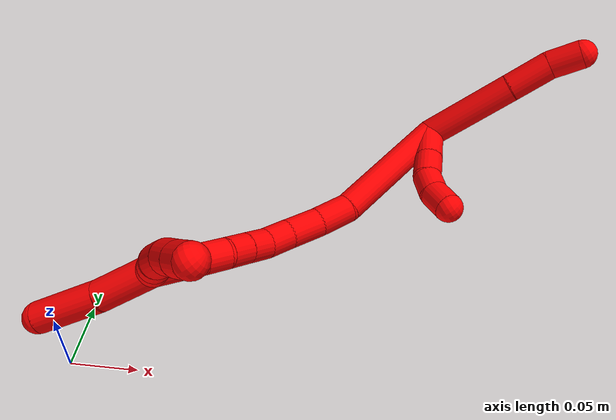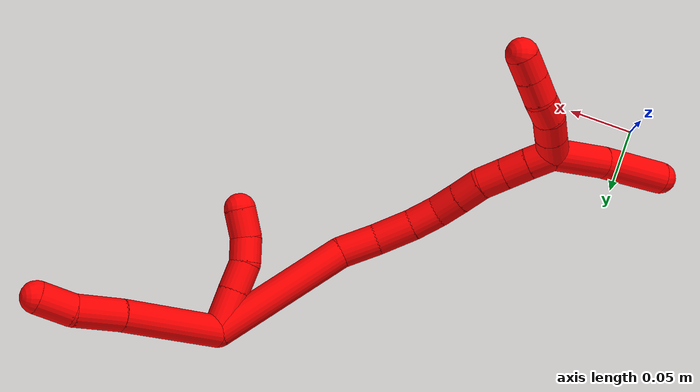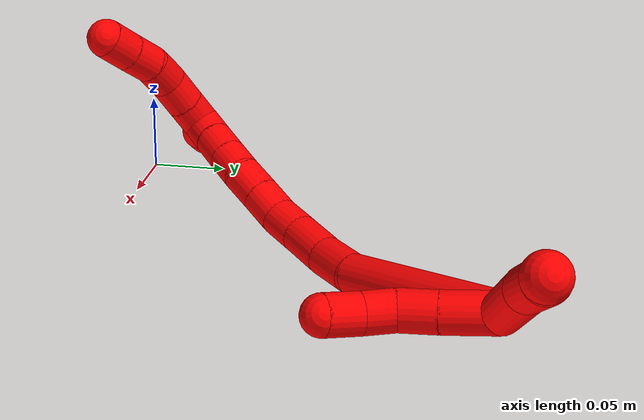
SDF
<sdf version="1.7">
 <world name="default">
  <model name="photoneo_s_sensor">
   <static>1</static>
   <pose>0 0 2 1.57079 1.57079 3.14159</pose>
   <link name="link">
    <inertial><mass>0.1</mass></inertial>
    <sensor name="sensor" type="depth">
     <update_rate>30</update_rate>
     <camera>
      <horizontal_fov>1.22</horizontal_fov>
      <image><width>1920</width><height>1200</height><format>B8G8R8</format></image>
      <clip><near>0.1</near><far>4</far></clip>
      <depth_camera><output>points</output></depth_camera>
     </camera>
     <plugin name="camera_plugin" filename="libgazebo_ros_depth_camera.so">
      <baseline>0.2</baseline>
      <alwaysOn>1</alwaysOn>
      <updateRate>0.0</updateRate>
      <cameraName>camera_ir</cameraName>
      <imageTopicName>/camera/color/image_raw</imageTopicName>
      <cameraInfoTopicName>/camera/color/camera_info</cameraInfoTopicName>
      <depthImageTopicName>/camera/depth/image_raw</depthImageTopicName>
      <depthImageCameraInfoTopicName>/camera/depth/camera_info</depthImageCameraInfoTopicName>
      <pointCloudTopicName>/camera/depth/points</pointCloudTopicName>
      <frameName>fr_optical</frameName>
      <pointCloudCutoff>0.1</pointCloudCutoff>
      <pointCloudCutoffMax>2.0</pointCloudCutoffMax>
      <distortionK1>0</distortionK1>
      <distortionK2>0</distortionK2>
      <distortionK3>0</distortionK3>
      <distortionT1>0</distortionT1>
      <distortionT2>0</distortionT2>
      <CxPrime>0</CxPrime>
      <Cx>0</Cx>
      <Cy>0</Cy>
      <focalLength>0</focalLength>
      <hackBaseline>0</hackBaseline>
     </plugin>
    </sensor>
   </link>
  </model>
  <model name="bin">
   <static>1</static>
   <link name="bottom">
    <collision name="collision-bottom">
     <pose>0 0 -0.01 0 -0 0</pose>
     <geometry><box><size>0.8 0.6 0.02</size></box></geometry>
     <surface>
      <friction><ode><mu>100</mu><mu2>100</mu2></ode></friction>
      <contact><collide_bitmask>65535</collide_bitmask></contact>
     </surface>
    </collision>
   </link>
   <link name="west_wall">
    <collision name="collision-west_wall">
     <pose>-0.41 0 0.1 0 -0 0</pose>
     <geometry><box><size>0.02 0.6 0.2</size></box></geometry>
     <surface>
      <friction><ode><mu>100</mu><mu2>100</mu2></ode></friction>
      <contact><collide_bitmask>65535</collide_bitmask></contact>
     </surface>
    </collision>
   </link>
   <link name="east_wall">
    <collision name="collision-east_wall">
     <pose>0.41 0 0.1 0 -0 0</pose>
     <geometry><box><size>0.02 0.6 0.2</size></box></geometry>
     <surface>
      <friction><ode><mu>100</mu><mu2>100</mu2></ode></friction>
      <contact><collide_bitmask>65535</collide_bitmask></contact>
     </surface>
    </collision>
   </link>
   <link name="south_wall">
    <collision name="collision-south_wall">
     <pose>0 -0.31 0.1 0 -0 0</pose>
     <geometry><box><size>0.8 0.02 0.2</size></box></geometry>
     <surface>
      <friction><ode><mu>100</mu><mu2>100</mu2></ode></friction>
      <contact><collide_bitmask>65535</collide_bitmask></contact>
     </surface>
    </collision>
   </link>
   <link name="north_wall">
    <collision name="collision-north_wall">
     <pose>0 0.31 0.1 0 -0 0</pose>
     <geometry><box><size>0.8 0.02 0.2</size></box></geometry>
     <surface>
      <friction><ode><mu>100</mu><mu2>100</mu2></ode></friction>
      <contact><collide_bitmask>65535</collide_bitmask></contact>
     </surface>
    </collision>
   </link>
  </model>
  <model name="2">
   <static>0</static>
   <link name="2">
    <collision name="collision-cylinder-e_1_2_8">
     <pose>-0.001439 -0.006623 0.040849 0.160727 -0.034748 -0.002799</pose>
     <geometry><cylinder><radius>0.0125</radius><length>0.082815</length></cylinder></geometry>
     <surface>
      <friction><ode><mu>1.16</mu><mu2>1.16</mu2><slip1>0</slip1><slip2>0</slip2></ode></friction>
      <contact><ode><kp>1e+06</kp><kd>1</kd><max_vel>0</max_vel><min_depth>0.001</min_depth></ode></contact>
     </surface>
    </collision>
    <visual name="visual-cylinder-e_1_2_8">
     <pose>-0.001439 -0.006623 0.040849 0.160727 -0.034748 -0.002799</pose>
     <geometry><cylinder><radius>0.0125</radius><length>0.082815</length></cylinder></geometry>
     <material><ambient>1 0 0 1</ambient></material>
    </visual>
    <collision name="collision-cylinder-e_2_8_9">
     <pose>-0.002844 -0.015138 0.100876 0.098349 0.001739 8.6e-05</pose>
     <geometry><cylinder><radius>0.0125</radius><length>0.038541</length></cylinder></geometry>
     <surface>
      <friction><ode><mu>1.16</mu><mu2>1.16</mu2><slip1>0</slip1><slip2>0</slip2></ode></friction>
      <contact><ode><kp>1e+06</kp><kd>1</kd><max_vel>0</max_vel><min_depth>0.001</min_depth></ode></contact>
     </surface>
    </collision>
    <visual name="visual-cylinder-e_2_8_9">
     <pose>-0.002844 -0.015138 0.100876 0.098349 0.001739 8.6e-05</pose>
     <geometry><cylinder><radius>0.0125</radius><length>0.038541</length></cylinder></geometry>
     <material><ambient>1 0 0 1</ambient></material>
    </visual>
    <collision name="collision-cylinder-e_3_9_6">
     <pose>-0.001404 -0.021647 0.133538 0.329897 0.098312 0.016378</pose>
     <geometry><cylinder><radius>0.0125</radius><length>0.028643</length></cylinder></geometry>
     <surface>
      <friction><ode><mu>1.16</mu><mu2>1.16</mu2><slip1>0</slip1><slip2>0</slip2></ode></friction>
      <contact><ode><kp>1e+06</kp><kd>1</kd><max_vel>0</max_vel><min_depth>0.001</min_depth></ode></contact>
     </surface>
    </collision>
    <visual name="visual-cylinder-e_3_9_6">
     <pose>-0.001404 -0.021647 0.133538 0.329897 0.098312 0.016378</pose>
     <geometry><cylinder><radius>0.0125</radius><length>0.028643</length></cylinder></geometry>
     <material><ambient>1 0 0 1</ambient></material>
    </visual>
    <collision name="collision-cylinder-e_1_2_10">
     <pose>0.000982 -0.01541 -0.006113 1.94845 0.059185 0.08712</pose>
     <geometry><cylinder><radius>0.0125</radius><length>0.033216</length></cylinder></geometry>
     <surface>
      <friction><ode><mu>1.16</mu><mu2>1.16</mu2><slip1>0</slip1><slip2>0</slip2></ode></friction>
      <contact><ode><kp>1e+06</kp><kd>1</kd><max_vel>0</max_vel><min_depth>0.001</min_depth></ode></contact>
     </surface>
    </collision>
    <visual name="visual-cylinder-e_1_2_10">
     <pose>0.000982 -0.01541 -0.006113 1.94845 0.059185 0.08712</pose>
     <geometry><cylinder><radius>0.0125</radius><length>0.033216</length></cylinder></geometry>
     <material><ambient>1 0 0 1</ambient></material>
    </visual>
    <collision name="collision-cylinder-e_2_10_11">
     <pose>0.00223 -0.041739 -0.01655 1.94787 0.022621 0.033288</pose>
     <geometry><cylinder><radius>0.0125</radius><length>0.023492</length></cylinder></geometry>
     <surface>
      <friction><ode><mu>1.16</mu><mu2>1.16</mu2><slip1>0</slip1><slip2>0</slip2></ode></friction>
      <contact><ode><kp>1e+06</kp><kd>1</kd><max_vel>0</max_vel><min_depth>0.001</min_depth></ode></contact>
     </surface>
    </collision>
    <visual name="visual-cylinder-e_2_10_11">
     <pose>0.00223 -0.041739 -0.01655 1.94787 0.022621 0.033288</pose>
     <geometry><cylinder><radius>0.0125</radius><length>0.023492</length></cylinder></geometry>
     <material><ambient>1 0 0 1</ambient></material>
    </visual>
    <collision name="collision-cylinder-e_3_11_12">
     <pose>0.004446 -0.062513 -0.0217 1.65439 0.194651 0.211521</pose>
     <geometry><cylinder><radius>0.0125</radius><length>0.020161</length></cylinder></geometry>
     <surface>
      <friction><ode><mu>1.16</mu><mu2>1.16</mu2><slip1>0</slip1><slip2>0</slip2></ode></friction>
      <contact><ode><kp>1e+06</kp><kd>1</kd><max_vel>0</max_vel><min_depth>0.001</min_depth></ode></contact>
     </surface>
    </collision>
    <visual name="visual-cylinder-e_3_11_12">
     <pose>0.004446 -0.062513 -0.0217 1.65439 0.194651 0.211521</pose>
     <geometry><cylinder><radius>0.0125</radius><length>0.020161</length></cylinder></geometry>
     <material><ambient>1 0 0 1</ambient></material>
    </visual>
    <collision name="collision-cylinder-e_4_12_5">
     <pose>0.008374 -0.083497 -0.020075 1.35402 0.171909 0.138289</pose>
     <geometry><cylinder><radius>0.0125</radius><length>0.023132</length></cylinder></geometry>
     <surface>
      <friction><ode><mu>1.16</mu><mu2>1.16</mu2><slip1>0</slip1><slip2>0</slip2></ode></friction>
      <contact><ode><kp>1e+06</kp><kd>1</kd><max_vel>0</max_vel><min_depth>0.001</min_depth></ode></contact>
     </surface>
    </collision>
    <visual name="visual-cylinder-e_4_12_5">
     <pose>0.008374 -0.083497 -0.020075 1.35402 0.171909 0.138289</pose>
     <geometry><cylinder><radius>0.0125</radius><length>0.023132</length></cylinder></geometry>
     <material><ambient>1 0 0 1</ambient></material>
    </visual>
    <collision name="collision-cylinder-e_1_2_13">
     <pose>-0.012089 -0.032502 -0.045276 2.51898 -0.213595 -0.643221</pose>
     <geometry><cylinder><radius>0.0125</radius><length>0.11406</length></cylinder></geometry>
     <surface>
      <friction><ode><mu>1.16</mu><mu2>1.16</mu2><slip1>0</slip1><slip2>0</slip2></ode></friction>
      <contact><ode><kp>1e+06</kp><kd>1</kd><max_vel>0</max_vel><min_depth>0.001</min_depth></ode></contact>
     </surface>
    </collision>
    <visual name="visual-cylinder-e_1_2_13">
     <pose>-0.012089 -0.032502 -0.045276 2.51898 -0.213595 -0.643221</pose>
     <geometry><cylinder><radius>0.0125</radius><length>0.11406</length></cylinder></geometry>
     <material><ambient>1 0 0 1</ambient></material>
    </visual>
    <collision name="collision-cylinder-e_2_13_14">
     <pose>-0.03033 -0.070965 -0.103082 2.69753 -0.417302 -1.50671</pose>
     <geometry><cylinder><radius>0.0125</radius><length>0.030356</length></cylinder></geometry>
     <surface>
      <friction><ode><mu>1.16</mu><mu2>1.16</mu2><slip1>0</slip1><slip2>0</slip2></ode></friction>
      <contact><ode><kp>1e+06</kp><kd>1</kd><max_vel>0</max_vel><min_depth>0.001</min_depth></ode></contact>
     </surface>
    </collision>
    <visual name="visual-cylinder-e_2_13_14">
     <pose>-0.03033 -0.070965 -0.103082 2.69753 -0.417302 -1.50671</pose>
     <geometry><cylinder><radius>0.0125</radius><length>0.030356</length></cylinder></geometry>
     <material><ambient>1 0 0 1</ambient></material>
    </visual>
    <collision name="collision-cylinder-e_3_14_15">
     <pose>-0.044132 -0.083661 -0.126866 2.60232 -0.528099 -1.54883</pose>
     <geometry><cylinder><radius>0.0125</radius><length>0.030367</length></cylinder></geometry>
     <surface>
      <friction><ode><mu>1.16</mu><mu2>1.16</mu2><slip1>0</slip1><slip2>0</slip2></ode></friction>
      <contact><ode><kp>1e+06</kp><kd>1</kd><max_vel>0</max_vel><min_depth>0.001</min_depth></ode></contact>
     </surface>
    </collision>
    <visual name="visual-cylinder-e_3_14_15">
     <pose>-0.044132 -0.083661 -0.126866 2.60232 -0.528099 -1.54883</pose>
     <geometry><cylinder><radius>0.0125</radius><length>0.030367</length></cylinder></geometry>
     <material><ambient>1 0 0 1</ambient></material>
    </visual>
    <collision name="collision-cylinder-e_4_15_16">
     <pose>-0.057839 -0.096333 -0.145782 2.48231 -0.558406 -1.39494</pose>
     <geometry><cylinder><radius>0.0125</radius><length>0.022861</length></cylinder></geometry>
     <surface>
      <friction><ode><mu>1.16</mu><mu2>1.16</mu2><slip1>0</slip1><slip2>0</slip2></ode></friction>
      <contact><ode><kp>1e+06</kp><kd>1</kd><max_vel>0</max_vel><min_depth>0.001</min_depth></ode></contact>
     </surface>
    </collision>
    <visual name="visual-cylinder-e_4_15_16">
     <pose>-0.057839 -0.096333 -0.145782 2.48231 -0.558406 -1.39494</pose>
     <geometry><cylinder><radius>0.0125</radius><length>0.022861</length></cylinder></geometry>
     <material><ambient>1 0 0 1</ambient></material>
    </visual>
    <collision name="collision-cylinder-e_5_16_17">
     <pose>-0.070938 -0.108242 -0.158414 2.26493 -0.736485 -1.37739</pose>
     <geometry><cylinder><radius>0.0125</radius><length>0.020971</length></cylinder></geometry>
     <surface>
      <friction><ode><mu>1.16</mu><mu2>1.16</mu2><slip1>0</slip1><slip2>0</slip2></ode></friction>
      <contact><ode><kp>1e+06</kp><kd>1</kd><max_vel>0</max_vel><min_depth>0.001</min_depth></ode></contact>
     </surface>
    </collision>
    <visual name="visual-cylinder-e_5_16_17">
     <pose>-0.070938 -0.108242 -0.158414 2.26493 -0.736485 -1.37739</pose>
     <geometry><cylinder><radius>0.0125</radius><length>0.020971</length></cylinder></geometry>
     <material><ambient>1 0 0 1</ambient></material>
    </visual>
    <collision name="collision-cylinder-e_6_17_18">
     <pose>-0.08497 -0.12037 -0.168169 2.2315 -0.730668 -1.32703</pose>
     <geometry><cylinder><radius>0.0125</radius><length>0.020944</length></cylinder></geometry>
     <surface>
      <friction><ode><mu>1.16</mu><mu2>1.16</mu2><slip1>0</slip1><slip2>0</slip2></ode></friction>
      <contact><ode><kp>1e+06</kp><kd>1</kd><max_vel>0</max_vel><min_depth>0.001</min_depth></ode></contact>
     </surface>
    </collision>
    <visual name="visual-cylinder-e_6_17_18">
     <pose>-0.08497 -0.12037 -0.168169 2.2315 -0.730668 -1.32703</pose>
     <geometry><cylinder><radius>0.0125</radius><length>0.020944</length></cylinder></geometry>
     <material><ambient>1 0 0 1</ambient></material>
    </visual>
    <collision name="collision-cylinder-e_7_18_19">
     <pose>-0.098361 -0.130984 -0.179275 2.52744 -0.69156 -1.69802</pose>
     <geometry><cylinder><radius>0.0125</radius><length>0.020079</length></cylinder></geometry>
     <surface>
      <friction><ode><mu>1.16</mu><mu2>1.16</mu2><slip1>0</slip1><slip2>0</slip2></ode></friction>
      <contact><ode><kp>1e+06</kp><kd>1</kd><max_vel>0</max_vel><min_depth>0.001</min_depth></ode></contact>
     </surface>
    </collision>
    <visual name="visual-cylinder-e_7_18_19">
     <pose>-0.098361 -0.130984 -0.179275 2.52744 -0.69156 -1.69802</pose>
     <geometry><cylinder><radius>0.0125</radius><length>0.020079</length></cylinder></geometry>
     <material><ambient>1 0 0 1</ambient></material>
    </visual>
    <collision name="collision-cylinder-e_8_19_20">
     <pose>-0.111305 -0.139958 -0.191896 2.51954 -0.700814 -1.69881</pose>
     <geometry><cylinder><radius>0.0125</radius><length>0.020289</length></cylinder></geometry>
     <surface>
      <friction><ode><mu>1.16</mu><mu2>1.16</mu2><slip1>0</slip1><slip2>0</slip2></ode></friction>
      <contact><ode><kp>1e+06</kp><kd>1</kd><max_vel>0</max_vel><min_depth>0.001</min_depth></ode></contact>
     </surface>
    </collision>
    <visual name="visual-cylinder-e_8_19_20">
     <pose>-0.111305 -0.139958 -0.191896 2.51954 -0.700814 -1.69881</pose>
     <geometry><cylinder><radius>0.0125</radius><length>0.020289</length></cylinder></geometry>
     <material><ambient>1 0 0 1</ambient></material>
    </visual>
    <collision name="collision-cylinder-e_9_20_1">
     <pose>-0.124278 -0.148686 -0.204651 2.56363 -0.695544 -1.7678</pose>
     <geometry><cylinder><radius>0.0125</radius><length>0.020073</length></cylinder></geometry>
     <surface>
      <friction><ode><mu>1.16</mu><mu2>1.16</mu2><slip1>0</slip1><slip2>0</slip2></ode></friction>
      <contact><ode><kp>1e+06</kp><kd>1</kd><max_vel>0</max_vel><min_depth>0.001</min_depth></ode></contact>
     </surface>
    </collision>
    <visual name="visual-cylinder-e_9_20_1">
     <pose>-0.124278 -0.148686 -0.204651 2.56363 -0.695544 -1.7678</pose>
     <geometry><cylinder><radius>0.0125</radius><length>0.020073</length></cylinder></geometry>
     <material><ambient>1 0 0 1</ambient></material>
    </visual>
    <collision name="collision-cylinder-e_1_1_21">
     <pose>-0.132909 -0.150919 -0.233922 -3.05521 -0.095718 1.67334</pose>
     <geometry><cylinder><radius>0.0125</radius><length>0.046017</length></cylinder></geometry>
     <surface>
      <friction><ode><mu>1.16</mu><mu2>1.16</mu2><slip1>0</slip1><slip2>0</slip2></ode></friction>
      <contact><ode><kp>1e+06</kp><kd>1</kd><max_vel>0</max_vel><min_depth>0.001</min_depth></ode></contact>
     </surface>
    </collision>
    <visual name="visual-cylinder-e_1_1_21">
     <pose>-0.132909 -0.150919 -0.233922 -3.05521 -0.095718 1.67334</pose>
     <geometry><cylinder><radius>0.0125</radius><length>0.046017</length></cylinder></geometry>
     <material><ambient>1 0 0 1</ambient></material>
    </visual>
    <collision name="collision-cylinder-e_2_21_4">
     <pose>-0.139121 -0.144261 -0.283017 -2.96526 -0.149245 1.40404</pose>
     <geometry><cylinder><radius>0.0125</radius><length>0.053983</length></cylinder></geometry>
     <surface>
      <friction><ode><mu>1.16</mu><mu2>1.16</mu2><slip1>0</slip1><slip2>0</slip2></ode></friction>
      <contact><ode><kp>1e+06</kp><kd>1</kd><max_vel>0</max_vel><min_depth>0.001</min_depth></ode></contact>
     </surface>
    </collision>
    <visual name="visual-cylinder-e_2_21_4">
     <pose>-0.139121 -0.144261 -0.283017 -2.96526 -0.149245 1.40404</pose>
     <geometry><cylinder><radius>0.0125</radius><length>0.053983</length></cylinder></geometry>
     <material><ambient>1 0 0 1</ambient></material>
    </visual>
    <collision name="collision-cylinder-e_1_1_22">
     <pose>-0.135625 -0.159658 -0.205617 0.889129 -0.51388 -0.249034</pose>
     <geometry><cylinder><radius>0.0125</radius><length>0.02</length></cylinder></geometry>
     <surface>
      <friction><ode><mu>1.16</mu><mu2>1.16</mu2><slip1>0</slip1><slip2>0</slip2></ode></friction>
      <contact><ode><kp>1e+06</kp><kd>1</kd><max_vel>0</max_vel><min_depth>0.001</min_depth></ode></contact>
     </surface>
    </collision>
    <visual name="visual-cylinder-e_1_1_22">
     <pose>-0.135625 -0.159658 -0.205617 0.889129 -0.51388 -0.249034</pose>
     <geometry><cylinder><radius>0.0125</radius><length>0.02</length></cylinder></geometry>
     <material><ambient>1 0 0 1</ambient></material>
    </visual>
    <collision name="collision-cylinder-e_2_22_23">
     <pose>-0.145548 -0.173187 -0.194733 0.897608 -0.524482 -0.257109</pose>
     <geometry><cylinder><radius>0.0125</radius><length>0.02</length></cylinder></geometry>
     <surface>
      <friction><ode><mu>1.16</mu><mu2>1.16</mu2><slip1>0</slip1><slip2>0</slip2></ode></friction>
      <contact><ode><kp>1e+06</kp><kd>1</kd><max_vel>0</max_vel><min_depth>0.001</min_depth></ode></contact>
     </surface>
    </collision>
    <visual name="visual-cylinder-e_2_22_23">
     <pose>-0.145548 -0.173187 -0.194733 0.897608 -0.524482 -0.257109</pose>
     <geometry><cylinder><radius>0.0125</radius><length>0.02</length></cylinder></geometry>
     <material><ambient>1 0 0 1</ambient></material>
    </visual>
    <collision name="collision-cylinder-e_3_23_24">
     <pose>-0.153628 -0.186406 -0.18234 0.744852 -0.312254 -0.12283</pose>
     <geometry><cylinder><radius>0.0125</radius><length>0.02</length></cylinder></geometry>
     <surface>
      <friction><ode><mu>1.16</mu><mu2>1.16</mu2><slip1>0</slip1><slip2>0</slip2></ode></friction>
      <contact><ode><kp>1e+06</kp><kd>1</kd><max_vel>0</max_vel><min_depth>0.001</min_depth></ode></contact>
     </surface>
    </collision>
    <visual name="visual-cylinder-e_3_23_24">
     <pose>-0.153628 -0.186406 -0.18234 0.744852 -0.312254 -0.12283</pose>
     <geometry><cylinder><radius>0.0125</radius><length>0.02</length></cylinder></geometry>
     <material><ambient>1 0 0 1</ambient></material>
    </visual>
    <collision name="collision-cylinder-e_4_24_25">
     <pose>-0.158239 -0.200709 -0.169346 0.91849 -0.154509 -0.076521</pose>
     <geometry><cylinder><radius>0.0125</radius><length>0.02</length></cylinder></geometry>
     <surface>
      <friction><ode><mu>1.16</mu><mu2>1.16</mu2><slip1>0</slip1><slip2>0</slip2></ode></friction>
      <contact><ode><kp>1e+06</kp><kd>1</kd><max_vel>0</max_vel><min_depth>0.001</min_depth></ode></contact>
     </surface>
    </collision>
    <visual name="visual-cylinder-e_4_24_25">
     <pose>-0.158239 -0.200709 -0.169346 0.91849 -0.154509 -0.076521</pose>
     <geometry><cylinder><radius>0.0125</radius><length>0.02</length></cylinder></geometry>
     <material><ambient>1 0 0 1</ambient></material>
    </visual>
    <collision name="collision-cylinder-e_5_25_3">
     <pose>-0.161402 -0.216291 -0.157215 0.900057 -0.1631 -0.078926</pose>
     <geometry><cylinder><radius>0.0125</radius><length>0.02</length></cylinder></geometry>
     <surface>
      <friction><ode><mu>1.16</mu><mu2>1.16</mu2><slip1>0</slip1><slip2>0</slip2></ode></friction>
      <contact><ode><kp>1e+06</kp><kd>1</kd><max_vel>0</max_vel><min_depth>0.001</min_depth></ode></contact>
     </surface>
    </collision>
    <visual name="visual-cylinder-e_5_25_3">
     <pose>-0.161402 -0.216291 -0.157215 0.900057 -0.1631 -0.078926</pose>
     <geometry><cylinder><radius>0.0125</radius><length>0.02</length></cylinder></geometry>
     <material><ambient>1 0 0 1</ambient></material>
    </visual>
    <collision name="collision-sphere-3">
     <pose>-0.163026 -0.22402 -0.151082 0 -0 0</pose>
     <geometry><sphere><radius>0.0125</radius></sphere></geometry>
     <surface>
      <friction><ode><mu>1.16</mu><mu2>1.16</mu2><slip1>0</slip1><slip2>0</slip2></ode></friction>
      <contact><ode><kp>1e+06</kp><kd>1</kd><max_vel>0</max_vel><min_depth>0.001</min_depth></ode></contact>
     </surface>
    </collision>
    <visual name="visual-sphere-3">
     <pose>-0.163026 -0.22402 -0.151082 0 -0 0</pose>
     <geometry><sphere><radius>0.0125</radius></sphere></geometry>
     <material><ambient>1 0 0 1</ambient></material>
    </visual>
    <collision name="collision-sphere-25">
     <pose>-0.159778 -0.208561 -0.163348 0 -0 0</pose>
     <geometry><sphere><radius>0.0125</radius></sphere></geometry>
     <surface>
      <friction><ode><mu>1.16</mu><mu2>1.16</mu2><slip1>0</slip1><slip2>0</slip2></ode></friction>
      <contact><ode><kp>1e+06</kp><kd>1</kd><max_vel>0</max_vel><min_depth>0.001</min_depth></ode></contact>
     </surface>
    </collision>
    <visual name="visual-sphere-25">
     <pose>-0.159778 -0.208561 -0.163348 0 -0 0</pose>
     <geometry><sphere><radius>0.0125</radius></sphere></geometry>
     <material><ambient>1 0 0 1</ambient></material>
    </visual>
    <collision name="collision-sphere-24">
     <pose>-0.1567 -0.192856 -0.175344 0 -0 0</pose>
     <geometry><sphere><radius>0.0125</radius></sphere></geometry>
     <surface>
      <friction><ode><mu>1.16</mu><mu2>1.16</mu2><slip1>0</slip1><slip2>0</slip2></ode></friction>
      <contact><ode><kp>1e+06</kp><kd>1</kd><max_vel>0</max_vel><min_depth>0.001</min_depth></ode></contact>
     </surface>
    </collision>
    <visual name="visual-sphere-24">
     <pose>-0.1567 -0.192856 -0.175344 0 -0 0</pose>
     <geometry><sphere><radius>0.0125</radius></sphere></geometry>
     <material><ambient>1 0 0 1</ambient></material>
    </visual>
    <collision name="collision-sphere-23">
     <pose>-0.150556 -0.179955 -0.189337 0 -0 0</pose>
     <geometry><sphere><radius>0.0125</radius></sphere></geometry>
     <surface>
      <friction><ode><mu>1.16</mu><mu2>1.16</mu2><slip1>0</slip1><slip2>0</slip2></ode></friction>
      <contact><ode><kp>1e+06</kp><kd>1</kd><max_vel>0</max_vel><min_depth>0.001</min_depth></ode></contact>
     </surface>
    </collision>
    <visual name="visual-sphere-23">
     <pose>-0.150556 -0.179955 -0.189337 0 -0 0</pose>
     <geometry><sphere><radius>0.0125</radius></sphere></geometry>
     <material><ambient>1 0 0 1</ambient></material>
    </visual>
    <collision name="collision-sphere-22">
     <pose>-0.140541 -0.16642 -0.20013 0 -0 0</pose>
     <geometry><sphere><radius>0.0125</radius></sphere></geometry>
     <surface>
      <friction><ode><mu>1.16</mu><mu2>1.16</mu2><slip1>0</slip1><slip2>0</slip2></ode></friction>
      <contact><ode><kp>1e+06</kp><kd>1</kd><max_vel>0</max_vel><min_depth>0.001</min_depth></ode></contact>
     </surface>
    </collision>
    <visual name="visual-sphere-22">
     <pose>-0.140541 -0.16642 -0.20013 0 -0 0</pose>
     <geometry><sphere><radius>0.0125</radius></sphere></geometry>
     <material><ambient>1 0 0 1</ambient></material>
    </visual>
    <collision name="collision-sphere-4">
     <pose>-0.143134 -0.139579 -0.309295 0 -0 0</pose>
     <geometry><sphere><radius>0.0125</radius></sphere></geometry>
     <surface>
      <friction><ode><mu>1.16</mu><mu2>1.16</mu2><slip1>0</slip1><slip2>0</slip2></ode></friction>
      <contact><ode><kp>1e+06</kp><kd>1</kd><max_vel>0</max_vel><min_depth>0.001</min_depth></ode></contact>
     </surface>
    </collision>
    <visual name="visual-sphere-4">
     <pose>-0.143134 -0.139579 -0.309295 0 -0 0</pose>
     <geometry><sphere><radius>0.0125</radius></sphere></geometry>
     <material><ambient>1 0 0 1</ambient></material>
    </visual>
    <collision name="collision-sphere-21">
     <pose>-0.135107 -0.148943 -0.25674 0 -0 0</pose>
     <geometry><sphere><radius>0.0125</radius></sphere></geometry>
     <surface>
      <friction><ode><mu>1.16</mu><mu2>1.16</mu2><slip1>0</slip1><slip2>0</slip2></ode></friction>
      <contact><ode><kp>1e+06</kp><kd>1</kd><max_vel>0</max_vel><min_depth>0.001</min_depth></ode></contact>
     </surface>
    </collision>
    <visual name="visual-sphere-21">
     <pose>-0.135107 -0.148943 -0.25674 0 -0 0</pose>
     <geometry><sphere><radius>0.0125</radius></sphere></geometry>
     <material><ambient>1 0 0 1</ambient></material>
    </visual>
    <collision name="collision-sphere-1">
     <pose>-0.13071 -0.152895 -0.211104 0 -0 0</pose>
     <geometry><sphere><radius>0.0125</radius></sphere></geometry>
     <surface>
      <friction><ode><mu>1.16</mu><mu2>1.16</mu2><slip1>0</slip1><slip2>0</slip2></ode></friction>
      <contact><ode><kp>1e+06</kp><kd>1</kd><max_vel>0</max_vel><min_depth>0.001</min_depth></ode></contact>
     </surface>
    </collision>
    <visual name="visual-sphere-1">
     <pose>-0.13071 -0.152895 -0.211104 0 -0 0</pose>
     <geometry><sphere><radius>0.0125</radius></sphere></geometry>
     <material><ambient>1 0 0 1</ambient></material>
    </visual>
    <collision name="collision-sphere-11">
     <pose>0.002496 -0.052657 -0.020874 0 -0 0</pose>
     <geometry><sphere><radius>0.0125</radius></sphere></geometry>
     <surface>
      <friction><ode><mu>1.16</mu><mu2>1.16</mu2><slip1>0</slip1><slip2>0</slip2></ode></friction>
      <contact><ode><kp>1e+06</kp><kd>1</kd><max_vel>0</max_vel><min_depth>0.001</min_depth></ode></contact>
     </surface>
    </collision>
    <visual name="visual-sphere-11">
     <pose>0.002496 -0.052657 -0.020874 0 -0 0</pose>
     <geometry><sphere><radius>0.0125</radius></sphere></geometry>
     <material><ambient>1 0 0 1</ambient></material>
    </visual>
    <collision name="collision-sphere-10">
     <pose>0.001965 -0.030821 -0.012227 0 -0 0</pose>
     <geometry><sphere><radius>0.0125</radius></sphere></geometry>
     <surface>
      <friction><ode><mu>1.16</mu><mu2>1.16</mu2><slip1>0</slip1><slip2>0</slip2></ode></friction>
      <contact><ode><kp>1e+06</kp><kd>1</kd><max_vel>0</max_vel><min_depth>0.001</min_depth></ode></contact>
     </surface>
    </collision>
    <visual name="visual-sphere-10">
     <pose>0.001965 -0.030821 -0.012227 0 -0 0</pose>
     <geometry><sphere><radius>0.0125</radius></sphere></geometry>
     <material><ambient>1 0 0 1</ambient></material>
    </visual>
    <collision name="collision-sphere-6">
     <pose>1e-06 -0.026264 0.147022 0 -0 0</pose>
     <geometry><sphere><radius>0.0125</radius></sphere></geometry>
     <surface>
      <friction><ode><mu>1.16</mu><mu2>1.16</mu2><slip1>0</slip1><slip2>0</slip2></ode></friction>
      <contact><ode><kp>1e+06</kp><kd>1</kd><max_vel>0</max_vel><min_depth>0.001</min_depth></ode></contact>
     </surface>
    </collision>
    <visual name="visual-sphere-6">
     <pose>1e-06 -0.026264 0.147022 0 -0 0</pose>
     <geometry><sphere><radius>0.0125</radius></sphere></geometry>
     <material><ambient>1 0 0 1</ambient></material>
    </visual>
    <collision name="collision-sphere-9">
     <pose>-0.00281 -0.01703 0.120054 0 -0 0</pose>
     <geometry><sphere><radius>0.0125</radius></sphere></geometry>
     <surface>
      <friction><ode><mu>1.16</mu><mu2>1.16</mu2><slip1>0</slip1><slip2>0</slip2></ode></friction>
      <contact><ode><kp>1e+06</kp><kd>1</kd><max_vel>0</max_vel><min_depth>0.001</min_depth></ode></contact>
     </surface>
    </collision>
    <visual name="visual-sphere-9">
     <pose>-0.00281 -0.01703 0.120054 0 -0 0</pose>
     <geometry><sphere><radius>0.0125</radius></sphere></geometry>
     <material><ambient>1 0 0 1</ambient></material>
    </visual>
    <collision name="collision-sphere-2">
     <geometry><sphere><radius>0.0125</radius></sphere></geometry>
     <surface>
      <friction><ode><mu>1.16</mu><mu2>1.16</mu2><slip1>0</slip1><slip2>0</slip2></ode></friction>
      <contact><ode><kp>1e+06</kp><kd>1</kd><max_vel>0</max_vel><min_depth>0.001</min_depth></ode></contact>
     </surface>
    </collision>
    <visual name="visual-sphere-2">
     <geometry><sphere><radius>0.0125</radius></sphere></geometry>
     <material><ambient>1 0 0 1</ambient></material>
    </visual>
    <collision name="collision-sphere-19">
     <pose>-0.104764 -0.13544 -0.185595 0 -0 0</pose>
     <geometry><sphere><radius>0.0125</radius></sphere></geometry>
     <surface>
      <friction><ode><mu>1.16</mu><mu2>1.16</mu2><slip1>0</slip1><slip2>0</slip2></ode></friction>
      <contact><ode><kp>1e+06</kp><kd>1</kd><max_vel>0</max_vel><min_depth>0.001</min_depth></ode></contact>
     </surface>
    </collision>
    <visual name="visual-sphere-19">
     <pose>-0.104764 -0.13544 -0.185595 0 -0 0</pose>
     <geometry><sphere><radius>0.0125</radius></sphere></geometry>
     <material><ambient>1 0 0 1</ambient></material>
    </visual>
    <collision name="collision-sphere-8">
     <pose>-0.002877 -0.013245 0.081698 0 -0 0</pose>
     <geometry><sphere><radius>0.0125</radius></sphere></geometry>
     <surface>
      <friction><ode><mu>1.16</mu><mu2>1.16</mu2><slip1>0</slip1><slip2>0</slip2></ode></friction>
      <contact><ode><kp>1e+06</kp><kd>1</kd><max_vel>0</max_vel><min_depth>0.001</min_depth></ode></contact>
     </surface>
    </collision>
    <visual name="visual-sphere-8">
     <pose>-0.002877 -0.013245 0.081698 0 -0 0</pose>
     <geometry><sphere><radius>0.0125</radius></sphere></geometry>
     <material><ambient>1 0 0 1</ambient></material>
    </visual>
    <collision name="collision-sphere-12">
     <pose>0.006396 -0.072368 -0.022526 0 -0 0</pose>
     <geometry><sphere><radius>0.0125</radius></sphere></geometry>
     <surface>
      <friction><ode><mu>1.16</mu><mu2>1.16</mu2><slip1>0</slip1><slip2>0</slip2></ode></friction>
      <contact><ode><kp>1e+06</kp><kd>1</kd><max_vel>0</max_vel><min_depth>0.001</min_depth></ode></contact>
     </surface>
    </collision>
    <visual name="visual-sphere-12">
     <pose>0.006396 -0.072368 -0.022526 0 -0 0</pose>
     <geometry><sphere><radius>0.0125</radius></sphere></geometry>
     <material><ambient>1 0 0 1</ambient></material>
    </visual>
    <collision name="collision-sphere-5">
     <pose>0.010353 -0.094625 -0.017624 0 -0 0</pose>
     <geometry><sphere><radius>0.0125</radius></sphere></geometry>
     <surface>
      <friction><ode><mu>1.16</mu><mu2>1.16</mu2><slip1>0</slip1><slip2>0</slip2></ode></friction>
      <contact><ode><kp>1e+06</kp><kd>1</kd><max_vel>0</max_vel><min_depth>0.001</min_depth></ode></contact>
     </surface>
    </collision>
    <visual name="visual-sphere-5">
     <pose>0.010353 -0.094625 -0.017624 0 -0 0</pose>
     <geometry><sphere><radius>0.0125</radius></sphere></geometry>
     <material><ambient>1 0 0 1</ambient></material>
    </visual>
    <collision name="collision-sphere-13">
     <pose>-0.024178 -0.065003 -0.090552 0 -0 0</pose>
     <geometry><sphere><radius>0.0125</radius></sphere></geometry>
     <surface>
      <friction><ode><mu>1.16</mu><mu2>1.16</mu2><slip1>0</slip1><slip2>0</slip2></ode></friction>
      <contact><ode><kp>1e+06</kp><kd>1</kd><max_vel>0</max_vel><min_depth>0.001</min_depth></ode></contact>
     </surface>
    </collision>
    <visual name="visual-sphere-13">
     <pose>-0.024178 -0.065003 -0.090552 0 -0 0</pose>
     <geometry><sphere><radius>0.0125</radius></sphere></geometry>
     <material><ambient>1 0 0 1</ambient></material>
    </visual>
    <collision name="collision-sphere-14">
     <pose>-0.036481 -0.076926 -0.115612 0 -0 0</pose>
     <geometry><sphere><radius>0.0125</radius></sphere></geometry>
     <surface>
      <friction><ode><mu>1.16</mu><mu2>1.16</mu2><slip1>0</slip1><slip2>0</slip2></ode></friction>
      <contact><ode><kp>1e+06</kp><kd>1</kd><max_vel>0</max_vel><min_depth>0.001</min_depth></ode></contact>
     </surface>
    </collision>
    <visual name="visual-sphere-14">
     <pose>-0.036481 -0.076926 -0.115612 0 -0 0</pose>
     <geometry><sphere><radius>0.0125</radius></sphere></geometry>
     <material><ambient>1 0 0 1</ambient></material>
    </visual>
    <collision name="collision-sphere-15">
     <pose>-0.051783 -0.090395 -0.138119 0 -0 0</pose>
     <geometry><sphere><radius>0.0125</radius></sphere></geometry>
     <surface>
      <friction><ode><mu>1.16</mu><mu2>1.16</mu2><slip1>0</slip1><slip2>0</slip2></ode></friction>
      <contact><ode><kp>1e+06</kp><kd>1</kd><max_vel>0</max_vel><min_depth>0.001</min_depth></ode></contact>
     </surface>
    </collision>
    <visual name="visual-sphere-15">
     <pose>-0.051783 -0.090395 -0.138119 0 -0 0</pose>
     <geometry><sphere><radius>0.0125</radius></sphere></geometry>
     <material><ambient>1 0 0 1</ambient></material>
    </visual>
    <collision name="collision-sphere-16">
     <pose>-0.063895 -0.102272 -0.153445 0 -0 0</pose>
     <geometry><sphere><radius>0.0125</radius></sphere></geometry>
     <surface>
      <friction><ode><mu>1.16</mu><mu2>1.16</mu2><slip1>0</slip1><slip2>0</slip2></ode></friction>
      <contact><ode><kp>1e+06</kp><kd>1</kd><max_vel>0</max_vel><min_depth>0.001</min_depth></ode></contact>
     </surface>
    </collision>
    <visual name="visual-sphere-16">
     <pose>-0.063895 -0.102272 -0.153445 0 -0 0</pose>
     <geometry><sphere><radius>0.0125</radius></sphere></geometry>
     <material><ambient>1 0 0 1</ambient></material>
    </visual>
    <collision name="collision-sphere-17">
     <pose>-0.077981 -0.114213 -0.163383 0 -0 0</pose>
     <geometry><sphere><radius>0.0125</radius></sphere></geometry>
     <surface>
      <friction><ode><mu>1.16</mu><mu2>1.16</mu2><slip1>0</slip1><slip2>0</slip2></ode></friction>
      <contact><ode><kp>1e+06</kp><kd>1</kd><max_vel>0</max_vel><min_depth>0.001</min_depth></ode></contact>
     </surface>
    </collision>
    <visual name="visual-sphere-17">
     <pose>-0.077981 -0.114213 -0.163383 0 -0 0</pose>
     <geometry><sphere><radius>0.0125</radius></sphere></geometry>
     <material><ambient>1 0 0 1</ambient></material>
    </visual>
    <collision name="collision-sphere-18">
     <pose>-0.091958 -0.126528 -0.172955 0 -0 0</pose>
     <geometry><sphere><radius>0.0125</radius></sphere></geometry>
     <surface>
      <friction><ode><mu>1.16</mu><mu2>1.16</mu2><slip1>0</slip1><slip2>0</slip2></ode></friction>
      <contact><ode><kp>1e+06</kp><kd>1</kd><max_vel>0</max_vel><min_depth>0.001</min_depth></ode></contact>
     </surface>
    </collision>
    <visual name="visual-sphere-18">
     <pose>-0.091958 -0.126528 -0.172955 0 -0 0</pose>
     <geometry><sphere><radius>0.0125</radius></sphere></geometry>
     <material><ambient>1 0 0 1</ambient></material>
    </visual>
    <collision name="collision-sphere-20">
     <pose>-0.117847 -0.144476 -0.198197 0 -0 0</pose>
     <geometry><sphere><radius>0.0125</radius></sphere></geometry>
     <surface>
      <friction><ode><mu>1.16</mu><mu2>1.16</mu2><slip1>0</slip1><slip2>0</slip2></ode></friction>
      <contact><ode><kp>1e+06</kp><kd>1</kd><max_vel>0</max_vel><min_depth>0.001</min_depth></ode></contact>
     </surface>
    </collision>
    <visual name="visual-sphere-20">
     <pose>-0.117847 -0.144476 -0.198197 0 -0 0</pose>
     <geometry><sphere><radius>0.0125</radius></sphere></geometry>
     <material><ambient>1 0 0 1</ambient></material>
    </visual>
    <inertial>
     <pose>-0.058097 -0.08499 -0.091399 0 -0 0</pose>
     <mass>0.75</mass>
     <inertia>
      <ixx>0.000101</ixx>
      <ixy>0</ixy>
      <ixz>0</ixz>
      <iyy>-9.8e-05</iyy>
      <iyz>0</iyz>
      <izz>0.000134</izz>
     </inertia>
    </inertial>
   </link>
   <pose>0.252113 0.262101 0.027377 -0.324936 0.992847 0.006193</pose>
  </model>
 </world>
</sdf>
